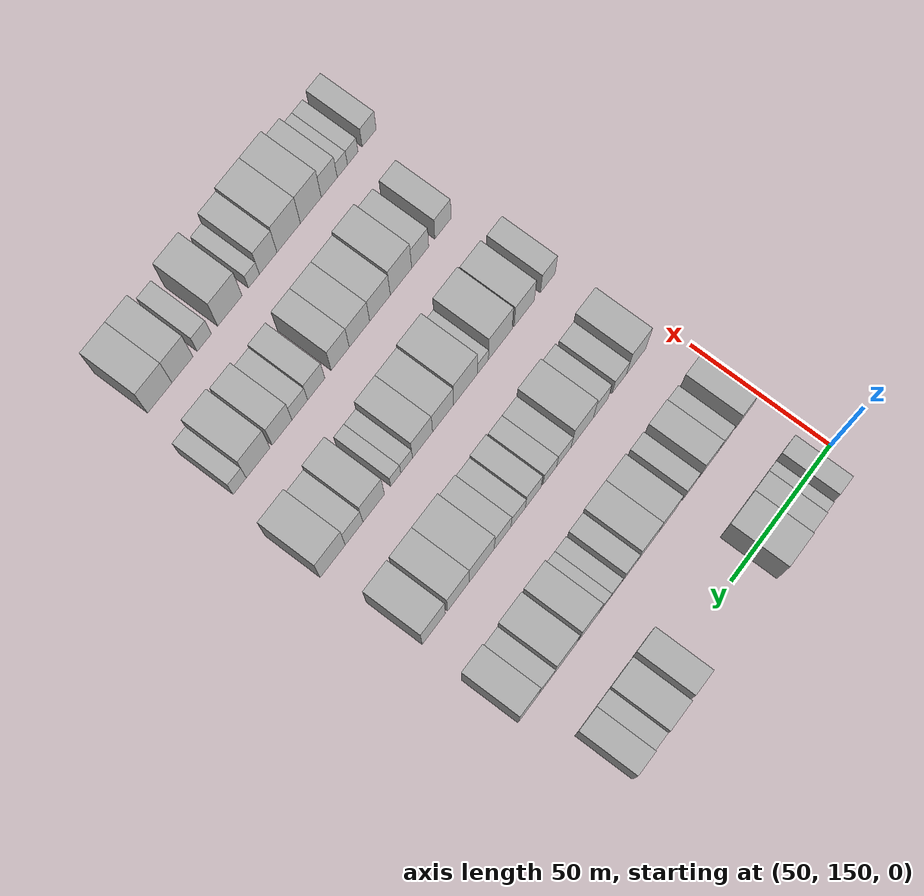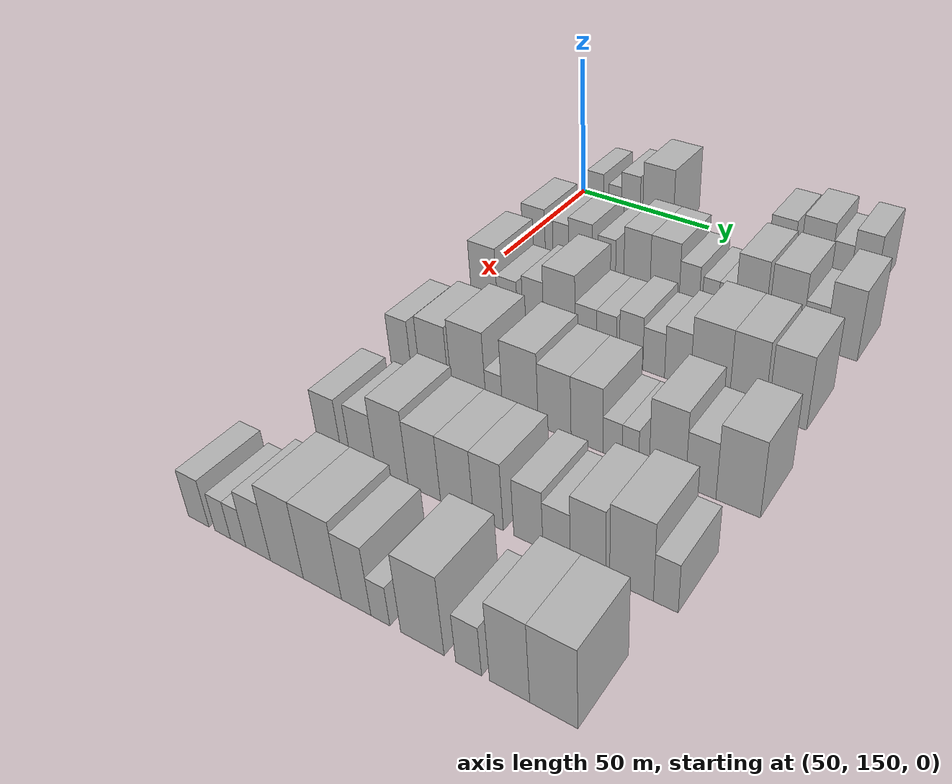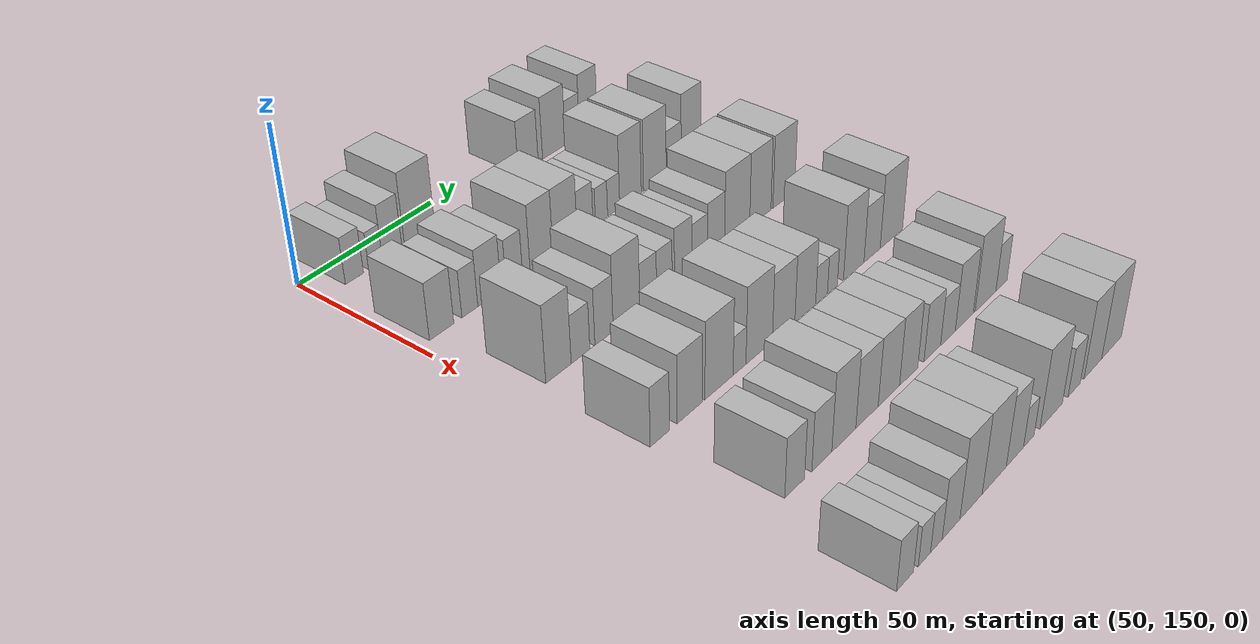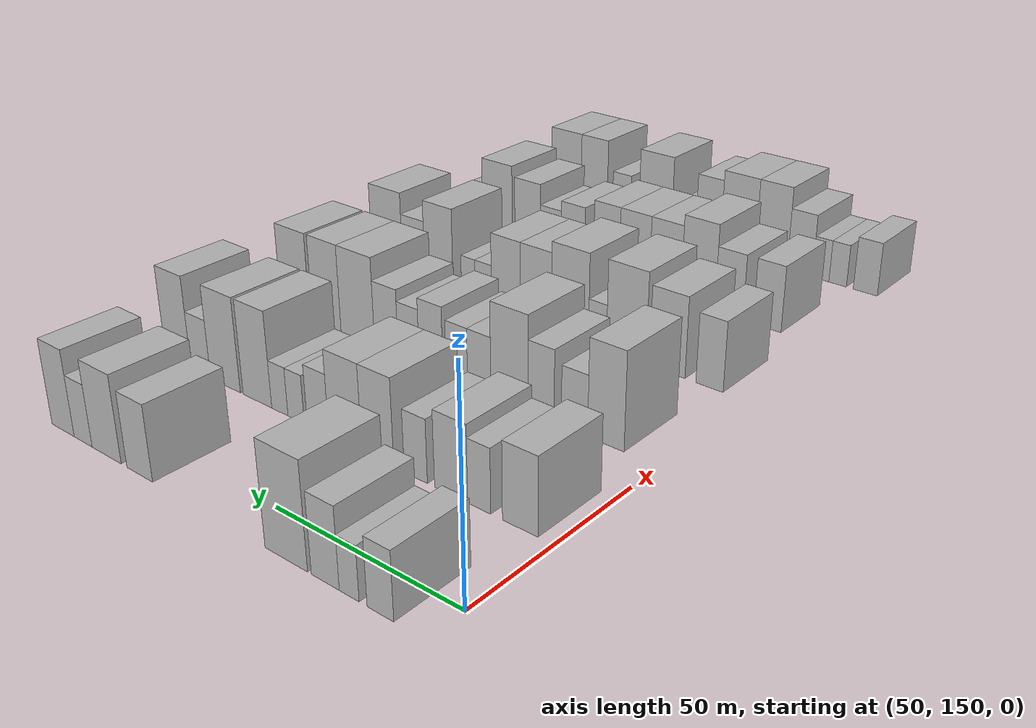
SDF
<sdf version="1.6">
 <world name="default">
  <model name="building_83">
   <static>1</static>
   <pose>50.0000 160.9649 0 0.000000 0.000000 0.000000</pose>
   <link name="link">
    <pose>0 0 7.50 0 0 0</pose>
    <collision name="collision"><geometry><box><size>20.0000 6.5716 15.0000</size></box></geometry></collision>
    <visual name="visual">
     <cast_shadows>0</cast_shadows>
     <geometry><box><size>20.0000 6.5716 15.0000</size></box></geometry>
     <material>
      <script>
       <uri>model://HANNAS_wall/materials/scripts</uri>
       <uri>model://HANNAS_wall/materials/textures</uri>
       <name>vrc/HANNAS_wall</name>
      </script>
     </material>
    </visual>
   </link>
  </model>
  <model name="building_84">
   <static>1</static>
   <pose>50.0000 168.7809 0 0.000000 0.000000 0.000000</pose>
   <link name="link">
    <pose>0 0 6.00 0 0 0</pose>
    <collision name="collision"><geometry><box><size>20.0000 5.0604 12.0000</size></box></geometry></collision>
    <visual name="visual">
     <cast_shadows>0</cast_shadows>
     <geometry><box><size>20.0000 5.0604 12.0000</size></box></geometry>
     <material>
      <script>
       <uri>model://HANNAS_wall/materials/scripts</uri>
       <uri>model://HANNAS_wall/materials/textures</uri>
       <name>vrc/HANNAS_wall</name>
      </script>
     </material>
    </visual>
   </link>
  </model>
  <model name="building_85">
   <static>1</static>
   <pose>50.0000 175.0108 0 0.000000 0.000000 0.000000</pose>
   <link name="link">
    <pose>0 0 9.00 0 0 0</pose>
    <collision name="collision"><geometry><box><size>20.0000 7.3992 18.0000</size></box></geometry></collision>
    <visual name="visual">
     <cast_shadows>0</cast_shadows>
     <geometry><box><size>20.0000 7.3992 18.0000</size></box></geometry>
     <material>
      <script>
       <uri>model://HANNAS_wall/materials/scripts</uri>
       <uri>model://HANNAS_wall/materials/textures</uri>
       <name>vrc/HANNAS_wall</name>
      </script>
     </material>
    </visual>
   </link>
  </model>
  <model name="building_86">
   <static>1</static>
   <pose>50.0000 185.6147 0 0.000000 0.000000 0.000000</pose>
   <link name="link">
    <pose>0 0 12.00 0 0 0</pose>
    <collision name="collision"><geometry><box><size>20.0000 11.8086 24.0000</size></box></geometry></collision>
    <visual name="visual">
     <cast_shadows>0</cast_shadows>
     <geometry><box><size>20.0000 11.8086 24.0000</size></box></geometry>
     <material>
      <script>
       <uri>model://HANNAS_wall/materials/scripts</uri>
       <uri>model://HANNAS_wall/materials/textures</uri>
       <name>vrc/HANNAS_wall</name>
      </script>
     </material>
    </visual>
   </link>
  </model>
  <model name="building_87">
   <static>1</static>
   <pose>50.0000 230.5966 0 0.000000 0.000000 0.000000</pose>
   <link name="link">
    <pose>0 0 9.00 0 0 0</pose>
    <collision name="collision"><geometry><box><size>20.0000 8.7184 18.0000</size></box></geometry></collision>
    <visual name="visual">
     <cast_shadows>0</cast_shadows>
     <geometry><box><size>20.0000 8.7184 18.0000</size></box></geometry>
     <material>
      <script>
       <uri>model://HANNAS_wall/materials/scripts</uri>
       <uri>model://HANNAS_wall/materials/textures</uri>
       <name>vrc/HANNAS_wall</name>
      </script>
     </material>
    </visual>
   </link>
  </model>
  <model name="building_88">
   <static>1</static>
   <pose>50.0000 242.1403 0 0.000000 0.000000 0.000000</pose>
   <link name="link">
    <pose>0 0 10.50 0 0 0</pose>
    <collision name="collision"><geometry><box><size>20.0000 10.3691 21.0000</size></box></geometry></collision>
    <visual name="visual">
     <cast_shadows>0</cast_shadows>
     <geometry><box><size>20.0000 10.3691 21.0000</size></box></geometry>
     <material>
      <script>
       <uri>model://HANNAS_wall/materials/scripts</uri>
       <uri>model://HANNAS_wall/materials/textures</uri>
       <name>vrc/HANNAS_wall</name>
      </script>
     </material>
    </visual>
   </link>
  </model>
  <model name="building_89">
   <static>1</static>
   <pose>50.0000 250.6292 0 0.000000 0.000000 0.000000</pose>
   <link name="link">
    <pose>0 0 7.50 0 0 0</pose>
    <collision name="collision"><geometry><box><size>20.0000 6.6085 15.0000</size></box></geometry></collision>
    <visual name="visual">
     <cast_shadows>0</cast_shadows>
     <geometry><box><size>20.0000 6.6085 15.0000</size></box></geometry>
     <material>
      <script>
       <uri>model://HANNAS_wall/materials/scripts</uri>
       <uri>model://HANNAS_wall/materials/textures</uri>
       <name>vrc/HANNAS_wall</name>
      </script>
     </material>
    </visual>
   </link>
  </model>
  <model name="building_90">
   <static>1</static>
   <pose>50.0000 258.1505 0 0.000000 0.000000 0.000000</pose>
   <link name="link">
    <pose>0 0 10.50 0 0 0</pose>
    <collision name="collision"><geometry><box><size>20.0000 8.4341 21.0000</size></box></geometry></collision>
    <visual name="visual">
     <cast_shadows>0</cast_shadows>
     <geometry><box><size>20.0000 8.4341 21.0000</size></box></geometry>
     <material>
      <script>
       <uri>model://HANNAS_wall/materials/scripts</uri>
       <uri>model://HANNAS_wall/materials/textures</uri>
       <name>vrc/HANNAS_wall</name>
      </script>
     </material>
    </visual>
   </link>
  </model>
  <model name="building_208">
   <static>1</static>
   <pose>85.0000 158.4225 0 0.000000 0.000000 0.000000</pose>
   <link name="link">
    <pose>0 0 9.00 0 0 0</pose>
    <collision name="collision"><geometry><box><size>20.0000 8.9048 18.0000</size></box></geometry></collision>
    <visual name="visual">
     <cast_shadows>0</cast_shadows>
     <geometry><box><size>20.0000 8.9048 18.0000</size></box></geometry>
     <material>
      <script>
       <uri>model://HANNAS_wall/materials/scripts</uri>
       <uri>model://HANNAS_wall/materials/textures</uri>
       <name>vrc/HANNAS_wall</name>
      </script>
     </material>
    </visual>
   </link>
  </model>
  <model name="building_209">
   <static>1</static>
   <pose>85.0000 168.8797 0 0.000000 0.000000 0.000000</pose>
   <link name="link">
    <pose>0 0 7.50 0 0 0</pose>
    <collision name="collision"><geometry><box><size>20.0000 6.0096 15.0000</size></box></geometry></collision>
    <visual name="visual">
     <cast_shadows>0</cast_shadows>
     <geometry><box><size>20.0000 6.0096 15.0000</size></box></geometry>
     <material>
      <script>
       <uri>model://HANNAS_wall/materials/scripts</uri>
       <uri>model://HANNAS_wall/materials/textures</uri>
       <name>vrc/HANNAS_wall</name>
      </script>
     </material>
    </visual>
   </link>
  </model>
  <model name="building_210">
   <static>1</static>
   <pose>85.0000 176.3643 0 0.000000 0.000000 0.000000</pose>
   <link name="link">
    <pose>0 0 9.00 0 0 0</pose>
    <collision name="collision"><geometry><box><size>20.0000 8.9595 18.0000</size></box></geometry></collision>
    <visual name="visual">
     <cast_shadows>0</cast_shadows>
     <geometry><box><size>20.0000 8.9595 18.0000</size></box></geometry>
     <material>
      <script>
       <uri>model://HANNAS_wall/materials/scripts</uri>
       <uri>model://HANNAS_wall/materials/textures</uri>
       <name>vrc/HANNAS_wall</name>
      </script>
     </material>
    </visual>
   </link>
  </model>
  <model name="building_211">
   <static>1</static>
   <pose>85.0000 186.0952 0 0.000000 0.000000 0.000000</pose>
   <link name="link">
    <pose>0 0 7.50 0 0 0</pose>
    <collision name="collision"><geometry><box><size>20.0000 6.5024 15.0000</size></box></geometry></collision>
    <visual name="visual">
     <cast_shadows>0</cast_shadows>
     <geometry><box><size>20.0000 6.5024 15.0000</size></box></geometry>
     <material>
      <script>
       <uri>model://HANNAS_wall/materials/scripts</uri>
       <uri>model://HANNAS_wall/materials/textures</uri>
       <name>vrc/HANNAS_wall</name>
      </script>
     </material>
    </visual>
   </link>
  </model>
  <model name="building_212">
   <static>1</static>
   <pose>85.0000 197.0530 0 0.000000 0.000000 0.000000</pose>
   <link name="link">
    <pose>0 0 10.50 0 0 0</pose>
    <collision name="collision"><geometry><box><size>20.0000 9.4132 21.0000</size></box></geometry></collision>
    <visual name="visual">
     <cast_shadows>0</cast_shadows>
     <geometry><box><size>20.0000 9.4132 21.0000</size></box></geometry>
     <material>
      <script>
       <uri>model://HANNAS_wall/materials/scripts</uri>
       <uri>model://HANNAS_wall/materials/textures</uri>
       <name>vrc/HANNAS_wall</name>
      </script>
     </material>
    </visual>
   </link>
  </model>
  <model name="building_213">
   <static>1</static>
   <pose>85.0000 206.8518 0 0.000000 0.000000 0.000000</pose>
   <link name="link">
    <pose>0 0 10.50 0 0 0</pose>
    <collision name="collision"><geometry><box><size>20.0000 10.1845 21.0000</size></box></geometry></collision>
    <visual name="visual">
     <cast_shadows>0</cast_shadows>
     <geometry><box><size>20.0000 10.1845 21.0000</size></box></geometry>
     <material>
      <script>
       <uri>model://HANNAS_wall/materials/scripts</uri>
       <uri>model://HANNAS_wall/materials/textures</uri>
       <name>vrc/HANNAS_wall</name>
      </script>
     </material>
    </visual>
   </link>
  </model>
  <model name="building_214">
   <static>1</static>
   <pose>85.0000 215.3669 0 0.000000 0.000000 0.000000</pose>
   <link name="link">
    <pose>0 0 7.50 0 0 0</pose>
    <collision name="collision"><geometry><box><size>20.0000 6.8456 15.0000</size></box></geometry></collision>
    <visual name="visual">
     <cast_shadows>0</cast_shadows>
     <geometry><box><size>20.0000 6.8456 15.0000</size></box></geometry>
     <material>
      <script>
       <uri>model://HANNAS_wall/materials/scripts</uri>
       <uri>model://HANNAS_wall/materials/textures</uri>
       <name>vrc/HANNAS_wall</name>
      </script>
     </material>
    </visual>
   </link>
  </model>
  <model name="building_215">
   <static>1</static>
   <pose>85.0000 222.4691 0 0.000000 0.000000 0.000000</pose>
   <link name="link">
    <pose>0 0 6.00 0 0 0</pose>
    <collision name="collision"><geometry><box><size>20.0000 5.3587 12.0000</size></box></geometry></collision>
    <visual name="visual">
     <cast_shadows>0</cast_shadows>
     <geometry><box><size>20.0000 5.3587 12.0000</size></box></geometry>
     <material>
      <script>
       <uri>model://HANNAS_wall/materials/scripts</uri>
       <uri>model://HANNAS_wall/materials/textures</uri>
       <name>vrc/HANNAS_wall</name>
      </script>
     </material>
    </visual>
   </link>
  </model>
  <model name="building_216">
   <static>1</static>
   <pose>85.0000 227.8558 0 0.000000 0.000000 0.000000</pose>
   <link name="link">
    <pose>0 0 6.00 0 0 0</pose>
    <collision name="collision"><geometry><box><size>20.0000 5.4148 12.0000</size></box></geometry></collision>
    <visual name="visual">
     <cast_shadows>0</cast_shadows>
     <geometry><box><size>20.0000 5.4148 12.0000</size></box></geometry>
     <material>
      <script>
       <uri>model://HANNAS_wall/materials/scripts</uri>
       <uri>model://HANNAS_wall/materials/textures</uri>
       <name>vrc/HANNAS_wall</name>
      </script>
     </material>
    </visual>
   </link>
  </model>
  <model name="building_217">
   <static>1</static>
   <pose>85.0000 235.4908 0 0.000000 0.000000 0.000000</pose>
   <link name="link">
    <pose>0 0 12.00 0 0 0</pose>
    <collision name="collision"><geometry><box><size>20.0000 9.8551 24.0000</size></box></geometry></collision>
    <visual name="visual">
     <cast_shadows>0</cast_shadows>
     <geometry><box><size>20.0000 9.8551 24.0000</size></box></geometry>
     <material>
      <script>
       <uri>model://HANNAS_wall/materials/scripts</uri>
       <uri>model://HANNAS_wall/materials/textures</uri>
       <name>vrc/HANNAS_wall</name>
      </script>
     </material>
    </visual>
   </link>
  </model>
  <model name="building_218">
   <static>1</static>
   <pose>85.0000 246.7722 0 0.000000 0.000000 0.000000</pose>
   <link name="link">
    <pose>0 0 12.00 0 0 0</pose>
    <collision name="collision"><geometry><box><size>20.0000 10.7077 24.0000</size></box></geometry></collision>
    <visual name="visual">
     <cast_shadows>0</cast_shadows>
     <geometry><box><size>20.0000 10.7077 24.0000</size></box></geometry>
     <material>
      <script>
       <uri>model://HANNAS_wall/materials/scripts</uri>
       <uri>model://HANNAS_wall/materials/textures</uri>
       <name>vrc/HANNAS_wall</name>
      </script>
     </material>
    </visual>
   </link>
  </model>
  <model name="building_219">
   <static>1</static>
   <pose>85.0000 255.7353 0 0.000000 0.000000 0.000000</pose>
   <link name="link">
    <pose>0 0 7.50 0 0 0</pose>
    <collision name="collision"><geometry><box><size>20.0000 7.2185 15.0000</size></box></geometry></collision>
    <visual name="visual">
     <cast_shadows>0</cast_shadows>
     <geometry><box><size>20.0000 7.2185 15.0000</size></box></geometry>
     <material>
      <script>
       <uri>model://HANNAS_wall/materials/scripts</uri>
       <uri>model://HANNAS_wall/materials/textures</uri>
       <name>vrc/HANNAS_wall</name>
      </script>
     </material>
    </visual>
   </link>
  </model>
  <model name="building_220">
   <static>1</static>
   <pose>85.0000 264.2129 0 0.000000 0.000000 0.000000</pose>
   <link name="link">
    <pose>0 0 12.00 0 0 0</pose>
    <collision name="collision"><geometry><box><size>20.0000 9.7367 24.0000</size></box></geometry></collision>
    <visual name="visual">
     <cast_shadows>0</cast_shadows>
     <geometry><box><size>20.0000 9.7367 24.0000</size></box></geometry>
     <material>
      <script>
       <uri>model://HANNAS_wall/materials/scripts</uri>
       <uri>model://HANNAS_wall/materials/textures</uri>
       <name>vrc/HANNAS_wall</name>
      </script>
     </material>
    </visual>
   </link>
  </model>
  <model name="building_333">
   <static>1</static>
   <pose>120.0000 163.8918 0 0.000000 0.000000 0.000000</pose>
   <link name="link">
    <pose>0 0 12.00 0 0 0</pose>
    <collision name="collision"><geometry><box><size>20.0000 9.6190 24.0000</size></box></geometry></collision>
    <visual name="visual">
     <cast_shadows>0</cast_shadows>
     <geometry><box><size>20.0000 9.6190 24.0000</size></box></geometry>
     <material>
      <script>
       <uri>model://HANNAS_wall/materials/scripts</uri>
       <uri>model://HANNAS_wall/materials/textures</uri>
       <name>vrc/HANNAS_wall</name>
      </script>
     </material>
    </visual>
   </link>
  </model>
  <model name="building_334">
   <static>1</static>
   <pose>120.0000 172.3060 0 0.000000 0.000000 0.000000</pose>
   <link name="link">
    <pose>0 0 7.50 0 0 0</pose>
    <collision name="collision"><geometry><box><size>20.0000 7.2095 15.0000</size></box></geometry></collision>
    <visual name="visual">
     <cast_shadows>0</cast_shadows>
     <geometry><box><size>20.0000 7.2095 15.0000</size></box></geometry>
     <material>
      <script>
       <uri>model://HANNAS_wall/materials/scripts</uri>
       <uri>model://HANNAS_wall/materials/textures</uri>
       <name>vrc/HANNAS_wall</name>
      </script>
     </material>
    </visual>
   </link>
  </model>
  <model name="building_335">
   <static>1</static>
   <pose>120.0000 181.5708 0 0.000000 0.000000 0.000000</pose>
   <link name="link">
    <pose>0 0 9.00 0 0 0</pose>
    <collision name="collision"><geometry><box><size>20.0000 7.3201 18.0000</size></box></geometry></collision>
    <visual name="visual">
     <cast_shadows>0</cast_shadows>
     <geometry><box><size>20.0000 7.3201 18.0000</size></box></geometry>
     <material>
      <script>
       <uri>model://HANNAS_wall/materials/scripts</uri>
       <uri>model://HANNAS_wall/materials/textures</uri>
       <name>vrc/HANNAS_wall</name>
      </script>
     </material>
    </visual>
   </link>
  </model>
  <model name="building_336">
   <static>1</static>
   <pose>120.0000 190.7069 0 0.000000 0.000000 0.000000</pose>
   <link name="link">
    <pose>0 0 12.00 0 0 0</pose>
    <collision name="collision"><geometry><box><size>20.0000 10.9521 24.0000</size></box></geometry></collision>
    <visual name="visual">
     <cast_shadows>0</cast_shadows>
     <geometry><box><size>20.0000 10.9521 24.0000</size></box></geometry>
     <material>
      <script>
       <uri>model://HANNAS_wall/materials/scripts</uri>
       <uri>model://HANNAS_wall/materials/textures</uri>
       <name>vrc/HANNAS_wall</name>
      </script>
     </material>
    </visual>
   </link>
  </model>
  <model name="building_337">
   <static>1</static>
   <pose>120.0000 199.7200 0 0.000000 0.000000 0.000000</pose>
   <link name="link">
    <pose>0 0 7.50 0 0 0</pose>
    <collision name="collision"><geometry><box><size>20.0000 7.0743 15.0000</size></box></geometry></collision>
    <visual name="visual">
     <cast_shadows>0</cast_shadows>
     <geometry><box><size>20.0000 7.0743 15.0000</size></box></geometry>
     <material>
      <script>
       <uri>model://HANNAS_wall/materials/scripts</uri>
       <uri>model://HANNAS_wall/materials/textures</uri>
       <name>vrc/HANNAS_wall</name>
      </script>
     </material>
    </visual>
   </link>
  </model>
  <model name="building_338">
   <static>1</static>
   <pose>120.0000 206.5993 0 0.000000 0.000000 0.000000</pose>
   <link name="link">
    <pose>0 0 7.50 0 0 0</pose>
    <collision name="collision"><geometry><box><size>20.0000 6.6842 15.0000</size></box></geometry></collision>
    <visual name="visual">
     <cast_shadows>0</cast_shadows>
     <geometry><box><size>20.0000 6.6842 15.0000</size></box></geometry>
     <material>
      <script>
       <uri>model://HANNAS_wall/materials/scripts</uri>
       <uri>model://HANNAS_wall/materials/textures</uri>
       <name>vrc/HANNAS_wall</name>
      </script>
     </material>
    </visual>
   </link>
  </model>
  <model name="building_339">
   <static>1</static>
   <pose>120.0000 214.7522 0 0.000000 0.000000 0.000000</pose>
   <link name="link">
    <pose>0 0 9.00 0 0 0</pose>
    <collision name="collision"><geometry><box><size>20.0000 7.6217 18.0000</size></box></geometry></collision>
    <visual name="visual">
     <cast_shadows>0</cast_shadows>
     <geometry><box><size>20.0000 7.6217 18.0000</size></box></geometry>
     <material>
      <script>
       <uri>model://HANNAS_wall/materials/scripts</uri>
       <uri>model://HANNAS_wall/materials/textures</uri>
       <name>vrc/HANNAS_wall</name>
      </script>
     </material>
    </visual>
   </link>
  </model>
  <model name="building_340">
   <static>1</static>
   <pose>120.0000 222.0270 0 0.000000 0.000000 0.000000</pose>
   <link name="link">
    <pose>0 0 7.50 0 0 0</pose>
    <collision name="collision"><geometry><box><size>20.0000 6.9279 15.0000</size></box></geometry></collision>
    <visual name="visual">
     <cast_shadows>0</cast_shadows>
     <geometry><box><size>20.0000 6.9279 15.0000</size></box></geometry>
     <material>
      <script>
       <uri>model://HANNAS_wall/materials/scripts</uri>
       <uri>model://HANNAS_wall/materials/textures</uri>
       <name>vrc/HANNAS_wall</name>
      </script>
     </material>
    </visual>
   </link>
  </model>
  <model name="building_341">
   <static>1</static>
   <pose>120.0000 229.5063 0 0.000000 0.000000 0.000000</pose>
   <link name="link">
    <pose>0 0 9.00 0 0 0</pose>
    <collision name="collision"><geometry><box><size>20.0000 8.0307 18.0000</size></box></geometry></collision>
    <visual name="visual">
     <cast_shadows>0</cast_shadows>
     <geometry><box><size>20.0000 8.0307 18.0000</size></box></geometry>
     <material>
      <script>
       <uri>model://HANNAS_wall/materials/scripts</uri>
       <uri>model://HANNAS_wall/materials/textures</uri>
       <name>vrc/HANNAS_wall</name>
      </script>
     </material>
    </visual>
   </link>
  </model>
  <model name="building_342">
   <static>1</static>
   <pose>120.0000 239.4557 0 0.000000 0.000000 0.000000</pose>
   <link name="link">
    <pose>0 0 12.00 0 0 0</pose>
    <collision name="collision"><geometry><box><size>20.0000 11.8681 24.0000</size></box></geometry></collision>
    <visual name="visual">
     <cast_shadows>0</cast_shadows>
     <geometry><box><size>20.0000 11.8681 24.0000</size></box></geometry>
     <material>
      <script>
       <uri>model://HANNAS_wall/materials/scripts</uri>
       <uri>model://HANNAS_wall/materials/textures</uri>
       <name>vrc/HANNAS_wall</name>
      </script>
     </material>
    </visual>
   </link>
  </model>
  <model name="building_343">
   <static>1</static>
   <pose>120.0000 250.5823 0 0.000000 0.000000 0.000000</pose>
   <link name="link">
    <pose>0 0 12.00 0 0 0</pose>
    <collision name="collision"><geometry><box><size>20.0000 10.3851 24.0000</size></box></geometry></collision>
    <visual name="visual">
     <cast_shadows>0</cast_shadows>
     <geometry><box><size>20.0000 10.3851 24.0000</size></box></geometry>
     <material>
      <script>
       <uri>model://HANNAS_wall/materials/scripts</uri>
       <uri>model://HANNAS_wall/materials/textures</uri>
       <name>vrc/HANNAS_wall</name>
      </script>
     </material>
    </visual>
   </link>
  </model>
  <model name="building_344">
   <static>1</static>
   <pose>120.0000 262.2533 0 0.000000 0.000000 0.000000</pose>
   <link name="link">
    <pose>0 0 12.00 0 0 0</pose>
    <collision name="collision"><geometry><box><size>20.0000 10.9570 24.0000</size></box></geometry></collision>
    <visual name="visual">
     <cast_shadows>0</cast_shadows>
     <geometry><box><size>20.0000 10.9570 24.0000</size></box></geometry>
     <material>
      <script>
       <uri>model://HANNAS_wall/materials/scripts</uri>
       <uri>model://HANNAS_wall/materials/textures</uri>
       <name>vrc/HANNAS_wall</name>
      </script>
     </material>
    </visual>
   </link>
  </model>
  <model name="building_451">
   <static>1</static>
   <pose>155.0000 160.1352 0 0.000000 0.000000 0.000000</pose>
   <link name="link">
    <pose>0 0 9.00 0 0 0</pose>
    <collision name="collision"><geometry><box><size>20.0000 7.3617 18.0000</size></box></geometry></collision>
    <visual name="visual">
     <cast_shadows>0</cast_shadows>
     <geometry><box><size>20.0000 7.3617 18.0000</size></box></geometry>
     <material>
      <script>
       <uri>model://HANNAS_wall/materials/scripts</uri>
       <uri>model://HANNAS_wall/materials/textures</uri>
       <name>vrc/HANNAS_wall</name>
      </script>
     </material>
    </visual>
   </link>
  </model>
  <model name="building_452">
   <static>1</static>
   <pose>155.0000 171.8353 0 0.000000 0.000000 0.000000</pose>
   <link name="link">
    <pose>0 0 10.50 0 0 0</pose>
    <collision name="collision"><geometry><box><size>20.0000 10.0384 21.0000</size></box></geometry></collision>
    <visual name="visual">
     <cast_shadows>0</cast_shadows>
     <geometry><box><size>20.0000 10.0384 21.0000</size></box></geometry>
     <material>
      <script>
       <uri>model://HANNAS_wall/materials/scripts</uri>
       <uri>model://HANNAS_wall/materials/textures</uri>
       <name>vrc/HANNAS_wall</name>
      </script>
     </material>
    </visual>
   </link>
  </model>
  <model name="building_453">
   <static>1</static>
   <pose>155.0000 183.6872 0 0.000000 0.000000 0.000000</pose>
   <link name="link">
    <pose>0 0 12.00 0 0 0</pose>
    <collision name="collision"><geometry><box><size>20.0000 11.6653 24.0000</size></box></geometry></collision>
    <visual name="visual">
     <cast_shadows>0</cast_shadows>
     <geometry><box><size>20.0000 11.6653 24.0000</size></box></geometry>
     <material>
      <script>
       <uri>model://HANNAS_wall/materials/scripts</uri>
       <uri>model://HANNAS_wall/materials/textures</uri>
       <name>vrc/HANNAS_wall</name>
      </script>
     </material>
    </visual>
   </link>
  </model>
  <model name="building_454">
   <static>1</static>
   <pose>155.0000 192.2461 0 0.000000 0.000000 0.000000</pose>
   <link name="link">
    <pose>0 0 6.00 0 0 0</pose>
    <collision name="collision"><geometry><box><size>20.0000 5.4526 12.0000</size></box></geometry></collision>
    <visual name="visual">
     <cast_shadows>0</cast_shadows>
     <geometry><box><size>20.0000 5.4526 12.0000</size></box></geometry>
     <material>
      <script>
       <uri>model://HANNAS_wall/materials/scripts</uri>
       <uri>model://HANNAS_wall/materials/textures</uri>
       <name>vrc/HANNAS_wall</name>
      </script>
     </material>
    </visual>
   </link>
  </model>
  <model name="building_455">
   <static>1</static>
   <pose>155.0000 200.7244 0 0.000000 0.000000 0.000000</pose>
   <link name="link">
    <pose>0 0 12.00 0 0 0</pose>
    <collision name="collision"><geometry><box><size>20.0000 11.5038 24.0000</size></box></geometry></collision>
    <visual name="visual">
     <cast_shadows>0</cast_shadows>
     <geometry><box><size>20.0000 11.5038 24.0000</size></box></geometry>
     <material>
      <script>
       <uri>model://HANNAS_wall/materials/scripts</uri>
       <uri>model://HANNAS_wall/materials/textures</uri>
       <name>vrc/HANNAS_wall</name>
      </script>
     </material>
    </visual>
   </link>
  </model>
  <model name="building_456">
   <static>1</static>
   <pose>155.0000 211.5689 0 0.000000 0.000000 0.000000</pose>
   <link name="link">
    <pose>0 0 10.50 0 0 0</pose>
    <collision name="collision"><geometry><box><size>20.0000 10.1853 21.0000</size></box></geometry></collision>
    <visual name="visual">
     <cast_shadows>0</cast_shadows>
     <geometry><box><size>20.0000 10.1853 21.0000</size></box></geometry>
     <material>
      <script>
       <uri>model://HANNAS_wall/materials/scripts</uri>
       <uri>model://HANNAS_wall/materials/textures</uri>
       <name>vrc/HANNAS_wall</name>
      </script>
     </material>
    </visual>
   </link>
  </model>
  <model name="building_457">
   <static>1</static>
   <pose>155.0000 221.4848 0 0.000000 0.000000 0.000000</pose>
   <link name="link">
    <pose>0 0 10.50 0 0 0</pose>
    <collision name="collision"><geometry><box><size>20.0000 9.6465 21.0000</size></box></geometry></collision>
    <visual name="visual">
     <cast_shadows>0</cast_shadows>
     <geometry><box><size>20.0000 9.6465 21.0000</size></box></geometry>
     <material>
      <script>
       <uri>model://HANNAS_wall/materials/scripts</uri>
       <uri>model://HANNAS_wall/materials/textures</uri>
       <name>vrc/HANNAS_wall</name>
      </script>
     </material>
    </visual>
   </link>
  </model>
  <model name="building_458">
   <static>1</static>
   <pose>155.0000 229.1058 0 0.000000 0.000000 0.000000</pose>
   <link name="link">
    <pose>0 0 6.00 0 0 0</pose>
    <collision name="collision"><geometry><box><size>20.0000 5.5955 12.0000</size></box></geometry></collision>
    <visual name="visual">
     <cast_shadows>0</cast_shadows>
     <geometry><box><size>20.0000 5.5955 12.0000</size></box></geometry>
     <material>
      <script>
       <uri>model://HANNAS_wall/materials/scripts</uri>
       <uri>model://HANNAS_wall/materials/textures</uri>
       <name>vrc/HANNAS_wall</name>
      </script>
     </material>
    </visual>
   </link>
  </model>
  <model name="building_459">
   <static>1</static>
   <pose>155.0000 234.3048 0 0.000000 0.000000 0.000000</pose>
   <link name="link">
    <pose>0 0 6.00 0 0 0</pose>
    <collision name="collision"><geometry><box><size>20.0000 4.8026 12.0000</size></box></geometry></collision>
    <visual name="visual">
     <cast_shadows>0</cast_shadows>
     <geometry><box><size>20.0000 4.8026 12.0000</size></box></geometry>
     <material>
      <script>
       <uri>model://HANNAS_wall/materials/scripts</uri>
       <uri>model://HANNAS_wall/materials/textures</uri>
       <name>vrc/HANNAS_wall</name>
      </script>
     </material>
    </visual>
   </link>
  </model>
  <model name="building_460">
   <static>1</static>
   <pose>155.0000 244.8208 0 0.000000 0.000000 0.000000</pose>
   <link name="link">
    <pose>0 0 12.00 0 0 0</pose>
    <collision name="collision"><geometry><box><size>20.0000 10.2293 24.0000</size></box></geometry></collision>
    <visual name="visual">
     <cast_shadows>0</cast_shadows>
     <geometry><box><size>20.0000 10.2293 24.0000</size></box></geometry>
     <material>
      <script>
       <uri>model://HANNAS_wall/materials/scripts</uri>
       <uri>model://HANNAS_wall/materials/textures</uri>
       <name>vrc/HANNAS_wall</name>
      </script>
     </material>
    </visual>
   </link>
  </model>
  <model name="building_461">
   <static>1</static>
   <pose>155.0000 254.0906 0 0.000000 0.000000 0.000000</pose>
   <link name="link">
    <pose>0 0 9.00 0 0 0</pose>
    <collision name="collision"><geometry><box><size>20.0000 8.3104 18.0000</size></box></geometry></collision>
    <visual name="visual">
     <cast_shadows>0</cast_shadows>
     <geometry><box><size>20.0000 8.3104 18.0000</size></box></geometry>
     <material>
      <script>
       <uri>model://HANNAS_wall/materials/scripts</uri>
       <uri>model://HANNAS_wall/materials/textures</uri>
       <name>vrc/HANNAS_wall</name>
      </script>
     </material>
    </visual>
   </link>
  </model>
  <model name="building_462">
   <static>1</static>
   <pose>155.0000 264.1372 0 0.000000 0.000000 0.000000</pose>
   <link name="link">
    <pose>0 0 12.00 0 0 0</pose>
    <collision name="collision"><geometry><box><size>20.0000 11.7829 24.0000</size></box></geometry></collision>
    <visual name="visual">
     <cast_shadows>0</cast_shadows>
     <geometry><box><size>20.0000 11.7829 24.0000</size></box></geometry>
     <material>
      <script>
       <uri>model://HANNAS_wall/materials/scripts</uri>
       <uri>model://HANNAS_wall/materials/textures</uri>
       <name>vrc/HANNAS_wall</name>
      </script>
     </material>
    </visual>
   </link>
  </model>
  <model name="building_573">
   <static>1</static>
   <pose>190.0000 165.3686 0 0.000000 0.000000 0.000000</pose>
   <link name="link">
    <pose>0 0 9.00 0 0 0</pose>
    <collision name="collision"><geometry><box><size>20.0000 7.9743 18.0000</size></box></geometry></collision>
    <visual name="visual">
     <cast_shadows>0</cast_shadows>
     <geometry><box><size>20.0000 7.9743 18.0000</size></box></geometry>
     <material>
      <script>
       <uri>model://HANNAS_wall/materials/scripts</uri>
       <uri>model://HANNAS_wall/materials/textures</uri>
       <name>vrc/HANNAS_wall</name>
      </script>
     </material>
    </visual>
   </link>
  </model>
  <model name="building_574">
   <static>1</static>
   <pose>190.0000 176.5438 0 0.000000 0.000000 0.000000</pose>
   <link name="link">
    <pose>0 0 9.00 0 0 0</pose>
    <collision name="collision"><geometry><box><size>20.0000 8.3761 18.0000</size></box></geometry></collision>
    <visual name="visual">
     <cast_shadows>0</cast_shadows>
     <geometry><box><size>20.0000 8.3761 18.0000</size></box></geometry>
     <material>
      <script>
       <uri>model://HANNAS_wall/materials/scripts</uri>
       <uri>model://HANNAS_wall/materials/textures</uri>
       <name>vrc/HANNAS_wall</name>
      </script>
     </material>
    </visual>
   </link>
  </model>
  <model name="building_575">
   <static>1</static>
   <pose>190.0000 185.9425 0 0.000000 0.000000 0.000000</pose>
   <link name="link">
    <pose>0 0 12.00 0 0 0</pose>
    <collision name="collision"><geometry><box><size>20.0000 10.4212 24.0000</size></box></geometry></collision>
    <visual name="visual">
     <cast_shadows>0</cast_shadows>
     <geometry><box><size>20.0000 10.4212 24.0000</size></box></geometry>
     <material>
      <script>
       <uri>model://HANNAS_wall/materials/scripts</uri>
       <uri>model://HANNAS_wall/materials/textures</uri>
       <name>vrc/HANNAS_wall</name>
      </script>
     </material>
    </visual>
   </link>
  </model>
  <model name="building_576">
   <static>1</static>
   <pose>190.0000 196.1548 0 0.000000 0.000000 0.000000</pose>
   <link name="link">
    <pose>0 0 10.50 0 0 0</pose>
    <collision name="collision"><geometry><box><size>20.0000 10.0035 21.0000</size></box></geometry></collision>
    <visual name="visual">
     <cast_shadows>0</cast_shadows>
     <geometry><box><size>20.0000 10.0035 21.0000</size></box></geometry>
     <material>
      <script>
       <uri>model://HANNAS_wall/materials/scripts</uri>
       <uri>model://HANNAS_wall/materials/textures</uri>
       <name>vrc/HANNAS_wall</name>
      </script>
     </material>
    </visual>
   </link>
  </model>
  <model name="building_577">
   <static>1</static>
   <pose>190.0000 206.0988 0 0.000000 0.000000 0.000000</pose>
   <link name="link">
    <pose>0 0 10.50 0 0 0</pose>
    <collision name="collision"><geometry><box><size>20.0000 9.8845 21.0000</size></box></geometry></collision>
    <visual name="visual">
     <cast_shadows>0</cast_shadows>
     <geometry><box><size>20.0000 9.8845 21.0000</size></box></geometry>
     <material>
      <script>
       <uri>model://HANNAS_wall/materials/scripts</uri>
       <uri>model://HANNAS_wall/materials/textures</uri>
       <name>vrc/HANNAS_wall</name>
      </script>
     </material>
    </visual>
   </link>
  </model>
  <model name="building_578">
   <static>1</static>
   <pose>190.0000 215.4013 0 0.000000 0.000000 0.000000</pose>
   <link name="link">
    <pose>0 0 10.50 0 0 0</pose>
    <collision name="collision"><geometry><box><size>20.0000 8.7204 21.0000</size></box></geometry></collision>
    <visual name="visual">
     <cast_shadows>0</cast_shadows>
     <geometry><box><size>20.0000 8.7204 21.0000</size></box></geometry>
     <material>
      <script>
       <uri>model://HANNAS_wall/materials/scripts</uri>
       <uri>model://HANNAS_wall/materials/textures</uri>
       <name>vrc/HANNAS_wall</name>
      </script>
     </material>
    </visual>
   </link>
  </model>
  <model name="building_579">
   <static>1</static>
   <pose>190.0000 226.8563 0 0.000000 0.000000 0.000000</pose>
   <link name="link">
    <pose>0 0 9.00 0 0 0</pose>
    <collision name="collision"><geometry><box><size>20.0000 8.1896 18.0000</size></box></geometry></collision>
    <visual name="visual">
     <cast_shadows>0</cast_shadows>
     <geometry><box><size>20.0000 8.1896 18.0000</size></box></geometry>
     <material>
      <script>
       <uri>model://HANNAS_wall/materials/scripts</uri>
       <uri>model://HANNAS_wall/materials/textures</uri>
       <name>vrc/HANNAS_wall</name>
      </script>
     </material>
    </visual>
   </link>
  </model>
  <model name="building_580">
   <static>1</static>
   <pose>190.0000 234.6940 0 0.000000 0.000000 0.000000</pose>
   <link name="link">
    <pose>0 0 7.50 0 0 0</pose>
    <collision name="collision"><geometry><box><size>20.0000 7.4859 15.0000</size></box></geometry></collision>
    <visual name="visual">
     <cast_shadows>0</cast_shadows>
     <geometry><box><size>20.0000 7.4859 15.0000</size></box></geometry>
     <material>
      <script>
       <uri>model://HANNAS_wall/materials/scripts</uri>
       <uri>model://HANNAS_wall/materials/textures</uri>
       <name>vrc/HANNAS_wall</name>
      </script>
     </material>
    </visual>
   </link>
  </model>
  <model name="building_581">
   <static>1</static>
   <pose>190.0000 243.1146 0 0.000000 0.000000 0.000000</pose>
   <link name="link">
    <pose>0 0 10.50 0 0 0</pose>
    <collision name="collision"><geometry><box><size>20.0000 9.3554 21.0000</size></box></geometry></collision>
    <visual name="visual">
     <cast_shadows>0</cast_shadows>
     <geometry><box><size>20.0000 9.3554 21.0000</size></box></geometry>
     <material>
      <script>
       <uri>model://HANNAS_wall/materials/scripts</uri>
       <uri>model://HANNAS_wall/materials/textures</uri>
       <name>vrc/HANNAS_wall</name>
      </script>
     </material>
    </visual>
   </link>
  </model>
  <model name="building_582">
   <static>1</static>
   <pose>190.0000 254.3737 0 0.000000 0.000000 0.000000</pose>
   <link name="link">
    <pose>0 0 12.00 0 0 0</pose>
    <collision name="collision"><geometry><box><size>20.0000 11.1628 24.0000</size></box></geometry></collision>
    <visual name="visual">
     <cast_shadows>0</cast_shadows>
     <geometry><box><size>20.0000 11.1628 24.0000</size></box></geometry>
     <material>
      <script>
       <uri>model://HANNAS_wall/materials/scripts</uri>
       <uri>model://HANNAS_wall/materials/textures</uri>
       <name>vrc/HANNAS_wall</name>
      </script>
     </material>
    </visual>
   </link>
  </model>
  <model name="building_583">
   <static>1</static>
   <pose>190.0000 263.0133 0 0.000000 0.000000 0.000000</pose>
   <link name="link">
    <pose>0 0 7.50 0 0 0</pose>
    <collision name="collision"><geometry><box><size>20.0000 6.1165 15.0000</size></box></geometry></collision>
    <visual name="visual">
     <cast_shadows>0</cast_shadows>
     <geometry><box><size>20.0000 6.1165 15.0000</size></box></geometry>
     <material>
      <script>
       <uri>model://HANNAS_wall/materials/scripts</uri>
       <uri>model://HANNAS_wall/materials/textures</uri>
       <name>vrc/HANNAS_wall</name>
      </script>
     </material>
    </visual>
   </link>
  </model>
  <model name="building_703">
   <static>1</static>
   <pose>225.0000 155.9218 0 0.000000 0.000000 0.000000</pose>
   <link name="link">
    <pose>0 0 7.50 0 0 0</pose>
    <collision name="collision"><geometry><box><size>20.0000 6.9283 15.0000</size></box></geometry></collision>
    <visual name="visual">
     <cast_shadows>0</cast_shadows>
     <geometry><box><size>20.0000 6.9283 15.0000</size></box></geometry>
     <material>
      <script>
       <uri>model://HANNAS_wall/materials/scripts</uri>
       <uri>model://HANNAS_wall/materials/textures</uri>
       <name>vrc/HANNAS_wall</name>
      </script>
     </material>
    </visual>
   </link>
  </model>
  <model name="building_704">
   <static>1</static>
   <pose>225.0000 163.9864 0 0.000000 0.000000 0.000000</pose>
   <link name="link">
    <pose>0 0 6.00 0 0 0</pose>
    <collision name="collision"><geometry><box><size>20.0000 5.2010 12.0000</size></box></geometry></collision>
    <visual name="visual">
     <cast_shadows>0</cast_shadows>
     <geometry><box><size>20.0000 5.2010 12.0000</size></box></geometry>
     <material>
      <script>
       <uri>model://HANNAS_wall/materials/scripts</uri>
       <uri>model://HANNAS_wall/materials/textures</uri>
       <name>vrc/HANNAS_wall</name>
      </script>
     </material>
    </visual>
   </link>
  </model>
  <model name="building_705">
   <static>1</static>
   <pose>225.0000 169.0918 0 0.000000 0.000000 0.000000</pose>
   <link name="link">
    <pose>0 0 6.00 0 0 0</pose>
    <collision name="collision"><geometry><box><size>20.0000 5.0099 12.0000</size></box></geometry></collision>
    <visual name="visual">
     <cast_shadows>0</cast_shadows>
     <geometry><box><size>20.0000 5.0099 12.0000</size></box></geometry>
     <material>
      <script>
       <uri>model://HANNAS_wall/materials/scripts</uri>
       <uri>model://HANNAS_wall/materials/textures</uri>
       <name>vrc/HANNAS_wall</name>
      </script>
     </material>
    </visual>
   </link>
  </model>
  <model name="building_706">
   <static>1</static>
   <pose>225.0000 175.5036 0 0.000000 0.000000 0.000000</pose>
   <link name="link">
    <pose>0 0 9.00 0 0 0</pose>
    <collision name="collision"><geometry><box><size>20.0000 7.8135 18.0000</size></box></geometry></collision>
    <visual name="visual">
     <cast_shadows>0</cast_shadows>
     <geometry><box><size>20.0000 7.8135 18.0000</size></box></geometry>
     <material>
      <script>
       <uri>model://HANNAS_wall/materials/scripts</uri>
       <uri>model://HANNAS_wall/materials/textures</uri>
       <name>vrc/HANNAS_wall</name>
      </script>
     </material>
    </visual>
   </link>
  </model>
  <model name="building_707">
   <static>1</static>
   <pose>225.0000 184.4874 0 0.000000 0.000000 0.000000</pose>
   <link name="link">
    <pose>0 0 12.00 0 0 0</pose>
    <collision name="collision"><geometry><box><size>20.0000 10.1543 24.0000</size></box></geometry></collision>
    <visual name="visual">
     <cast_shadows>0</cast_shadows>
     <geometry><box><size>20.0000 10.1543 24.0000</size></box></geometry>
     <material>
      <script>
       <uri>model://HANNAS_wall/materials/scripts</uri>
       <uri>model://HANNAS_wall/materials/textures</uri>
       <name>vrc/HANNAS_wall</name>
      </script>
     </material>
    </visual>
   </link>
  </model>
  <model name="building_708">
   <static>1</static>
   <pose>225.0000 195.2298 0 0.000000 0.000000 0.000000</pose>
   <link name="link">
    <pose>0 0 12.00 0 0 0</pose>
    <collision name="collision"><geometry><box><size>20.0000 11.3305 24.0000</size></box></geometry></collision>
    <visual name="visual">
     <cast_shadows>0</cast_shadows>
     <geometry><box><size>20.0000 11.3305 24.0000</size></box></geometry>
     <material>
      <script>
       <uri>model://HANNAS_wall/materials/scripts</uri>
       <uri>model://HANNAS_wall/materials/textures</uri>
       <name>vrc/HANNAS_wall</name>
      </script>
     </material>
    </visual>
   </link>
  </model>
  <model name="building_709">
   <static>1</static>
   <pose>225.0000 205.1210 0 0.000000 0.000000 0.000000</pose>
   <link name="link">
    <pose>0 0 10.50 0 0 0</pose>
    <collision name="collision"><geometry><box><size>20.0000 8.4518 21.0000</size></box></geometry></collision>
    <visual name="visual">
     <cast_shadows>0</cast_shadows>
     <geometry><box><size>20.0000 8.4518 21.0000</size></box></geometry>
     <material>
      <script>
       <uri>model://HANNAS_wall/materials/scripts</uri>
       <uri>model://HANNAS_wall/materials/textures</uri>
       <name>vrc/HANNAS_wall</name>
      </script>
     </material>
    </visual>
   </link>
  </model>
  <model name="building_710">
   <static>1</static>
   <pose>225.0000 211.9768 0 0.000000 0.000000 0.000000</pose>
   <link name="link">
    <pose>0 0 6.00 0 0 0</pose>
    <collision name="collision"><geometry><box><size>20.0000 5.2599 12.0000</size></box></geometry></collision>
    <visual name="visual">
     <cast_shadows>0</cast_shadows>
     <geometry><box><size>20.0000 5.2599 12.0000</size></box></geometry>
     <material>
      <script>
       <uri>model://HANNAS_wall/materials/scripts</uri>
       <uri>model://HANNAS_wall/materials/textures</uri>
       <name>vrc/HANNAS_wall</name>
      </script>
     </material>
    </visual>
   </link>
  </model>
  <model name="building_711">
   <static>1</static>
   <pose>225.0000 223.4317 0 0.000000 0.000000 0.000000</pose>
   <link name="link">
    <pose>0 0 12.00 0 0 0</pose>
    <collision name="collision"><geometry><box><size>20.0000 11.6498 24.0000</size></box></geometry></collision>
    <visual name="visual">
     <cast_shadows>0</cast_shadows>
     <geometry><box><size>20.0000 11.6498 24.0000</size></box></geometry>
     <material>
      <script>
       <uri>model://HANNAS_wall/materials/scripts</uri>
       <uri>model://HANNAS_wall/materials/textures</uri>
       <name>vrc/HANNAS_wall</name>
      </script>
     </material>
    </visual>
   </link>
  </model>
  <model name="building_712">
   <static>1</static>
   <pose>225.0000 235.5762 0 0.000000 0.000000 0.000000</pose>
   <link name="link">
    <pose>0 0 7.50 0 0 0</pose>
    <collision name="collision"><geometry><box><size>20.0000 6.6393 15.0000</size></box></geometry></collision>
    <visual name="visual">
     <cast_shadows>0</cast_shadows>
     <geometry><box><size>20.0000 6.6393 15.0000</size></box></geometry>
     <material>
      <script>
       <uri>model://HANNAS_wall/materials/scripts</uri>
       <uri>model://HANNAS_wall/materials/textures</uri>
       <name>vrc/HANNAS_wall</name>
      </script>
     </material>
    </visual>
   </link>
  </model>
  <model name="building_713">
   <static>1</static>
   <pose>225.0000 245.8338 0 0.000000 0.000000 0.000000</pose>
   <link name="link">
    <pose>0 0 12.00 0 0 0</pose>
    <collision name="collision"><geometry><box><size>20.0000 9.8758 24.0000</size></box></geometry></collision>
    <visual name="visual">
     <cast_shadows>0</cast_shadows>
     <geometry><box><size>20.0000 9.8758 24.0000</size></box></geometry>
     <material>
      <script>
       <uri>model://HANNAS_wall/materials/scripts</uri>
       <uri>model://HANNAS_wall/materials/textures</uri>
       <name>vrc/HANNAS_wall</name>
      </script>
     </material>
    </visual>
   </link>
  </model>
  <model name="building_714">
   <static>1</static>
   <pose>225.0000 256.4650 0 0.000000 0.000000 0.000000</pose>
   <link name="link">
    <pose>0 0 12.00 0 0 0</pose>
    <collision name="collision"><geometry><box><size>20.0000 11.3866 24.0000</size></box></geometry></collision>
    <visual name="visual">
     <cast_shadows>0</cast_shadows>
     <geometry><box><size>20.0000 11.3866 24.0000</size></box></geometry>
     <material>
      <script>
       <uri>model://HANNAS_wall/materials/scripts</uri>
       <uri>model://HANNAS_wall/materials/textures</uri>
       <name>vrc/HANNAS_wall</name>
      </script>
     </material>
    </visual>
   </link>
  </model>
 </world>
</sdf>
